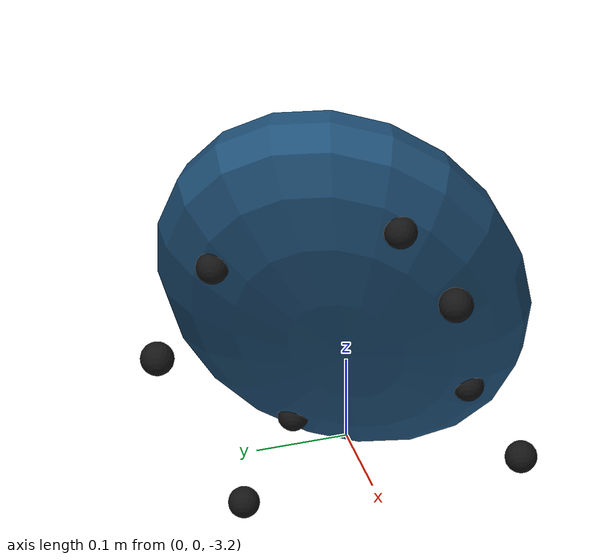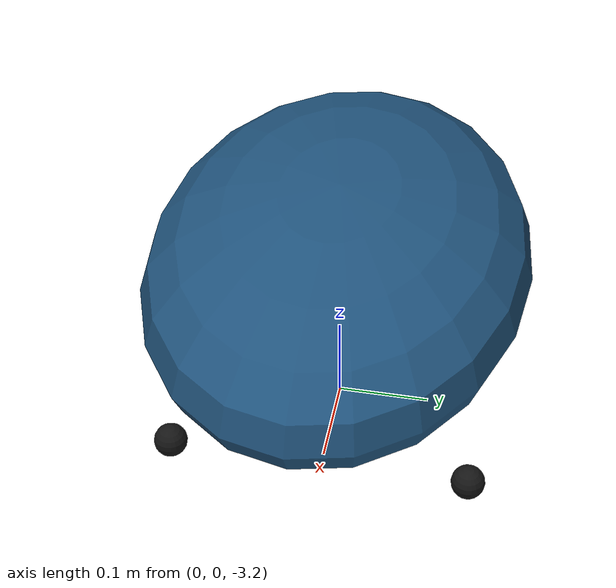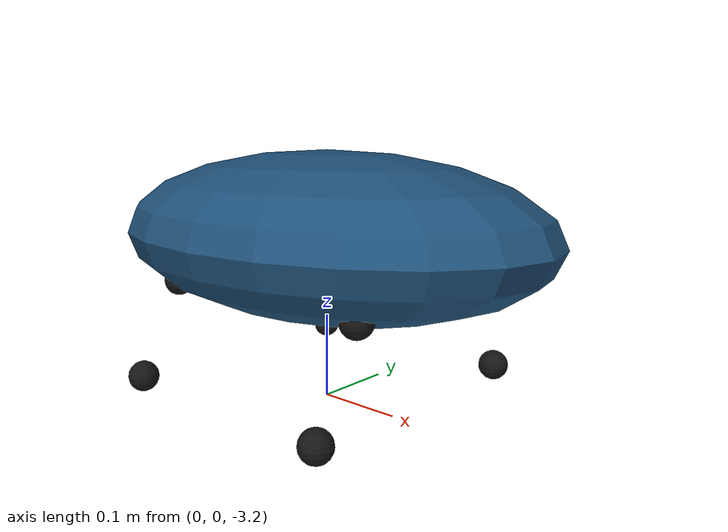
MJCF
<mujoco model="T60 AUV policy validation">
  <compiler angle="radian" inertiafromgeom="false" autolimits="true"/>
  <option timestep="0.005" gravity="0 0 -9.81" integrator="RK4">
    <flag contact="disable"/>
  </option>

  <visual>
    <headlight ambient="0.25 0.25 0.25" diffuse="0.75 0.75 0.75"/>
    <rgba haze="0.05 0.15 0.20 1"/>
    <global azimuth="135" elevation="-25"/>
  </visual>

  <asset>
    <material name="hull" rgba="0.12 0.32 0.48 1"/>
    <material name="thruster" rgba="0.08 0.08 0.08 1"/>
  </asset>

  <worldbody>
    <light pos="0 0 4" dir="0 0 -1"/>
    <geom name="water_plane" type="plane" pos="0 0 -1" size="8 8 0.02"
          rgba="0.05 0.25 0.35 0.18" contype="0" conaffinity="0"/>

    <body name="t60_auv" pos="0 0 -3">
      <freejoint name="t60_auv_freejoint"/>
      <inertial pos="0 0 0" mass="11.301"
                fullinertia="0.115628684 0.201210129 0.259427119 -0.000010883 -0.001001989 -0.000004539"/>
      <geom name="hull" type="ellipsoid" size="0.28075 0.200999878 0.0953108865"
            material="hull" contype="0" conaffinity="0"/>

      <site name="thruster_T1" pos="0.13400 -0.16000 -0.17098" size="0.018"
            type="sphere" material="thruster"/>
      <site name="thruster_T2" pos="-0.15000 -0.16000 -0.17098" size="0.018"
            type="sphere" material="thruster"/>
      <site name="thruster_T3" pos="0.13400 0.16000 -0.17098" size="0.018"
            type="sphere" material="thruster"/>
      <site name="thruster_T4" pos="-0.15000 0.16000 -0.17098" size="0.018"
            type="sphere" material="thruster"/>
      <site name="thruster_T5" pos="-0.15039 0.10360 -0.06312" size="0.018"
            type="sphere" material="thruster"/>
      <site name="thruster_T6" pos="-0.15039 -0.10360 -0.06312" size="0.018"
            type="sphere" material="thruster"/>
      <site name="thruster_T7" pos="0.13439 0.10360 -0.06312" size="0.018"
            type="sphere" material="thruster"/>
      <site name="thruster_T8" pos="0.13439 -0.10360 -0.06312" size="0.018"
            type="sphere" material="thruster"/>
    </body>
  </worldbody>
</mujoco>
